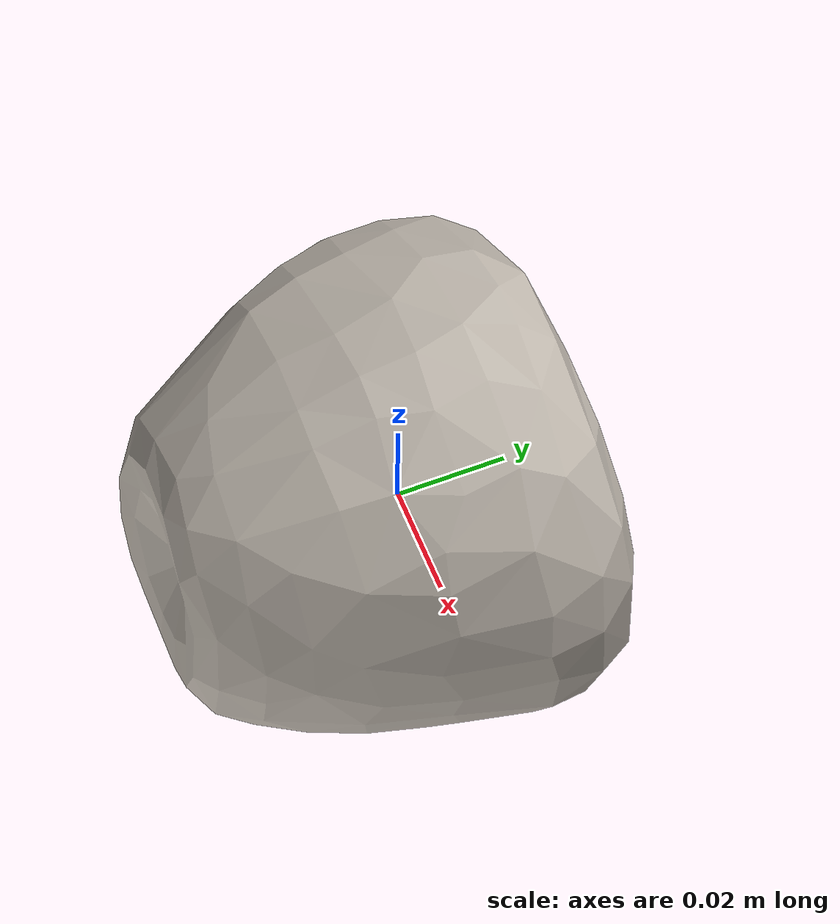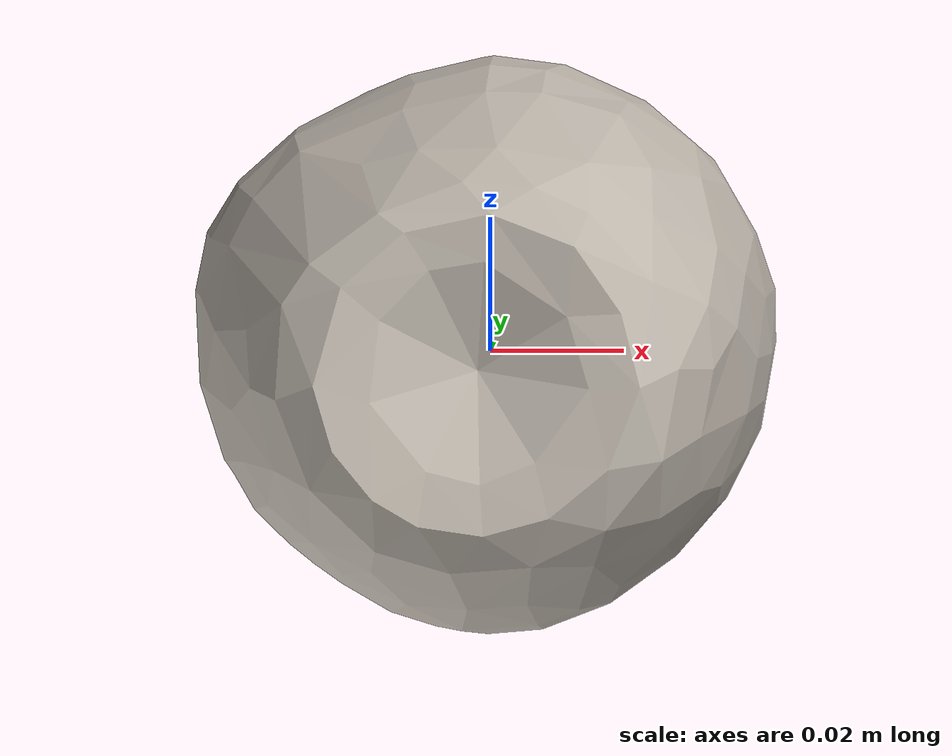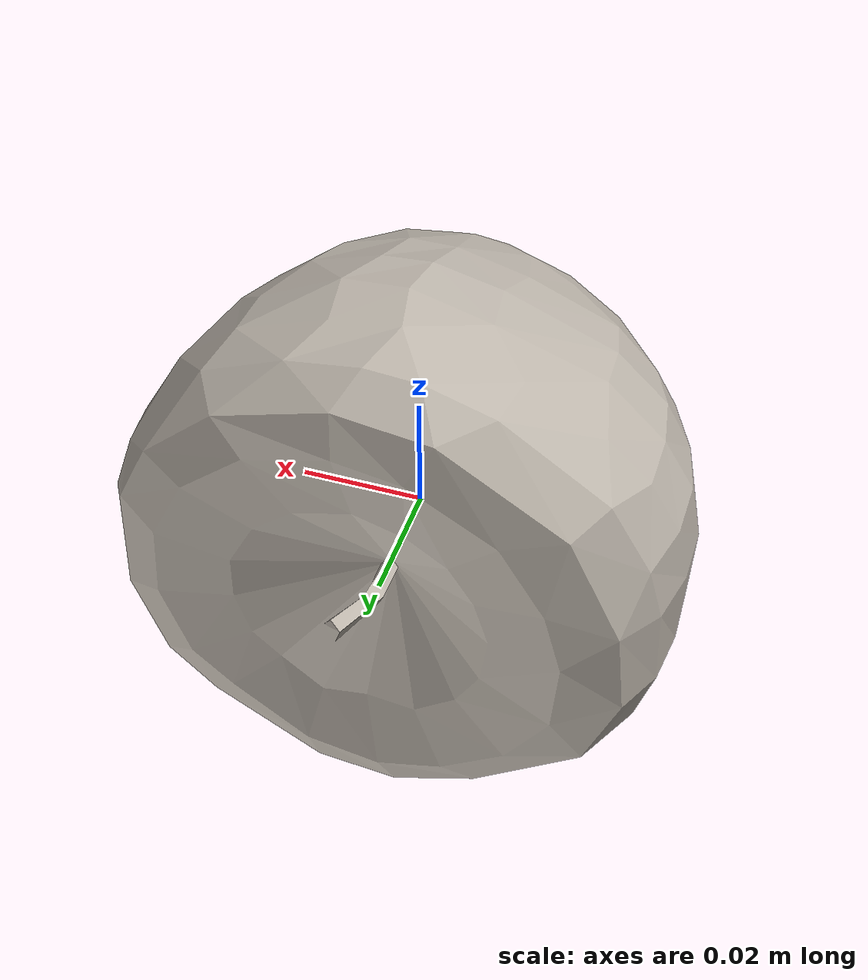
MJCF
<mujoco model="Apple_22">
  <compiler autolimits="true" boundmass="0.01" angle="radian"/>
  <default>
    <default class="/">
      <default class="__VISUAL_MJT__">
        <geom contype="0" conaffinity="0" group="0"/>
      </default>
      <default class="__STRUCTURAL_MJT__">
        <geom contype="8" conaffinity="15" group="4" friction="0.90000000000000002 0.90000000000000002 0.001" solref="0.025000000000000001 1" solimp="0.998 0.998 0.001"/>
      </default>
      <default class="__DYNAMIC_MJT__">
        <geom contype="1" conaffinity="15" group="4" friction="0.90000000000000002 0.90000000000000002 0.001" solref="0.025000000000000001 1" solimp="0.998 0.998 0.001"/>
      </default>
    </default>
  </default>
  <asset>
    <texture name="Apple2_Mat1" type="2d" file="Apple2_AlbedoTransparency1.png"/>
    <material name="material_Apple2_Mat1" class="/" texture="Apple2_Mat1" specular="0.5" shininess="0.5" rgba="1 1 1 1"/>
    <mesh name="Apple_22_apple_b7" class="/" file="Apple_22_apple_b7/Apple_22_apple_b7.obj" scale="1 1 1"/>
  </asset>
  <worldbody>
    <body name="Apple_22">
      <joint name="Apple_22_free" class="/" type="free" pos="0 0 0" axis="0 0 1" stiffness="0" range="0 0" armature="0" damping="0.10000000000000001" frictionloss="0"/>
      <body name="Apple_22_apple_b7" pos="-0 0.0044400000000000004 0" quat="1 0 0 0">
        <geom name="Apple_22_apple_b7" class="__VISUAL_MJT__" type="mesh" material="material_Apple2_Mat1" shellinertia="false" mesh="Apple_22_apple_b7"/>
        <geom name="Apple_22_PrimitiveCollider_0" class="__DYNAMIC_MJT__" type="capsule" size="0.044973984360694885 0.0049854516983032227" rgba="0 1 0 1" pos="-0 -0.0044368356466293335 0" quat="0.70710678118654757 0.70710678118654746 0 0"/>
      </body>
    </body>
  </worldbody>
</mujoco>
